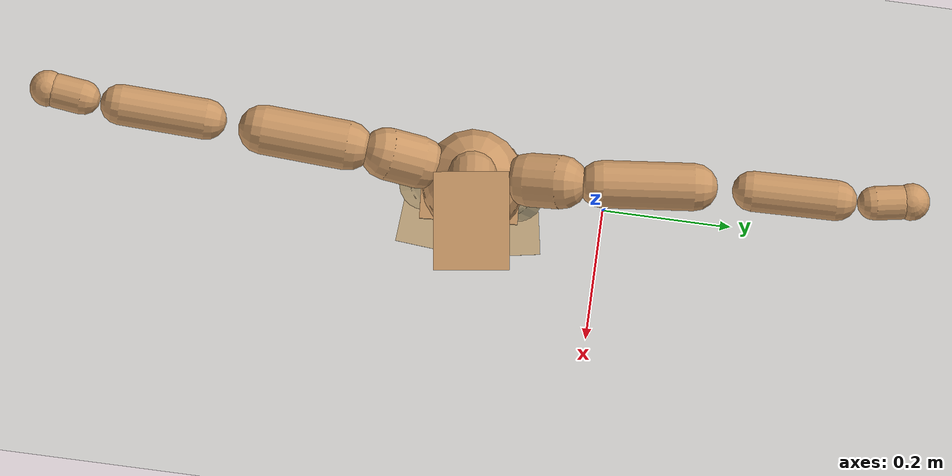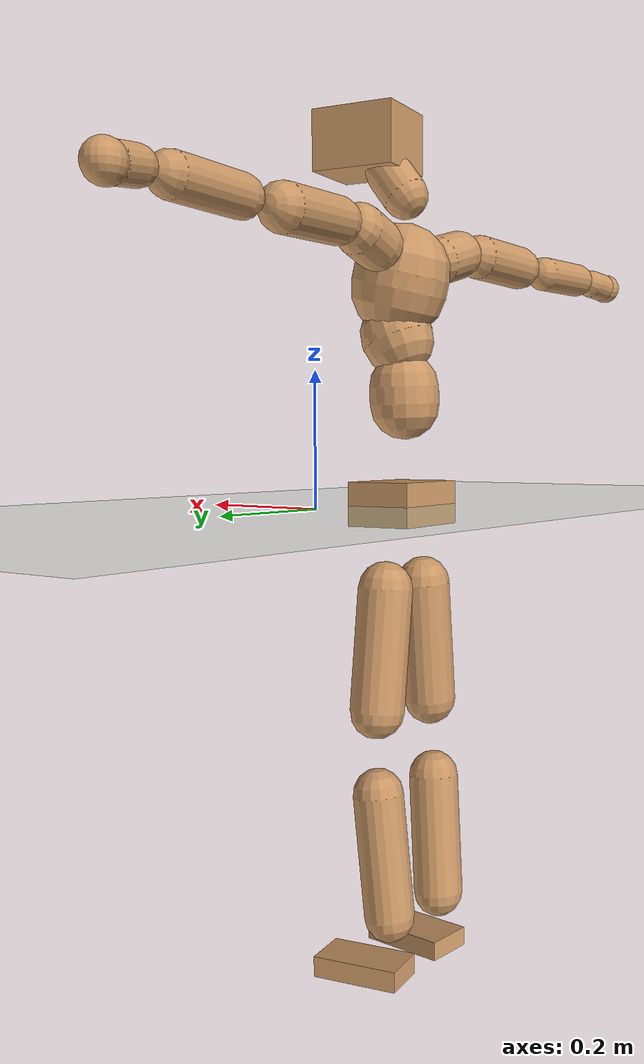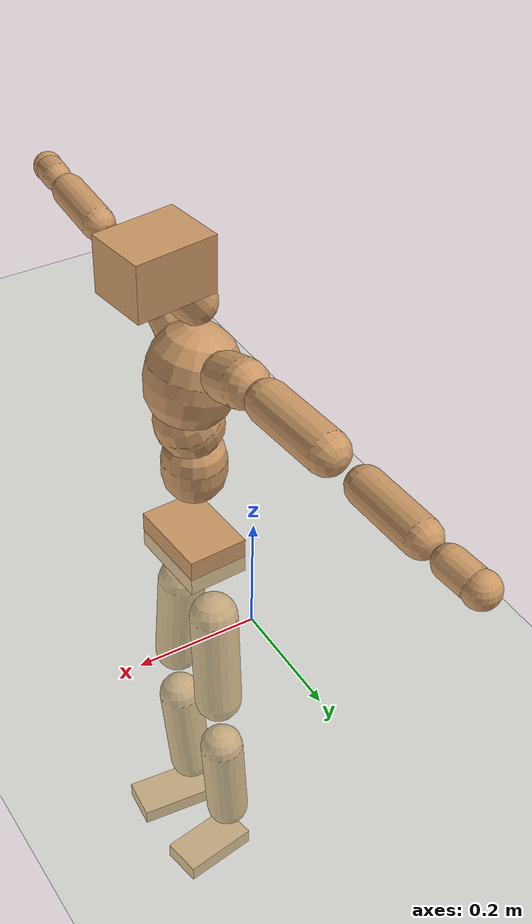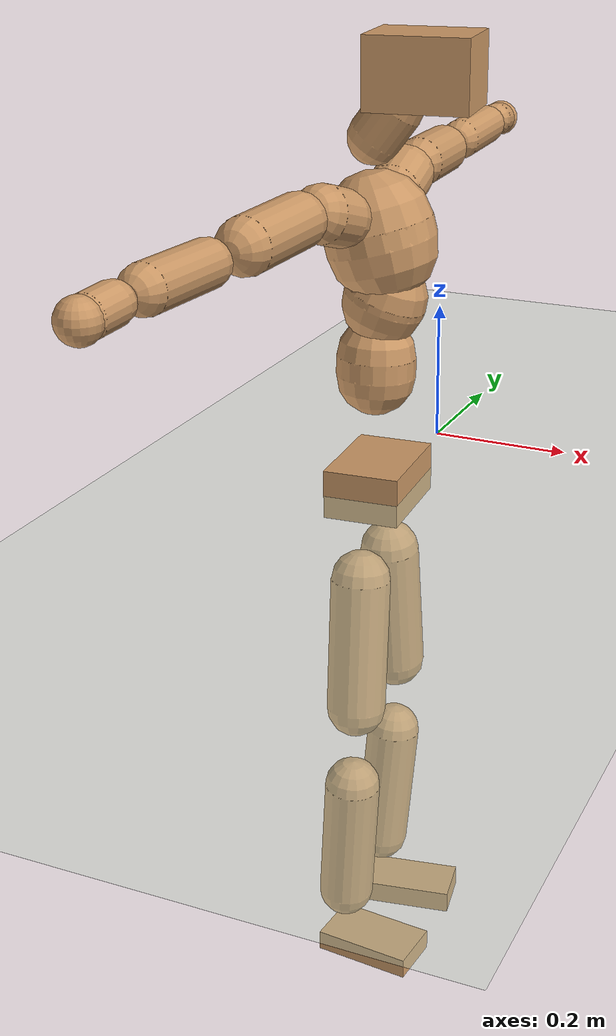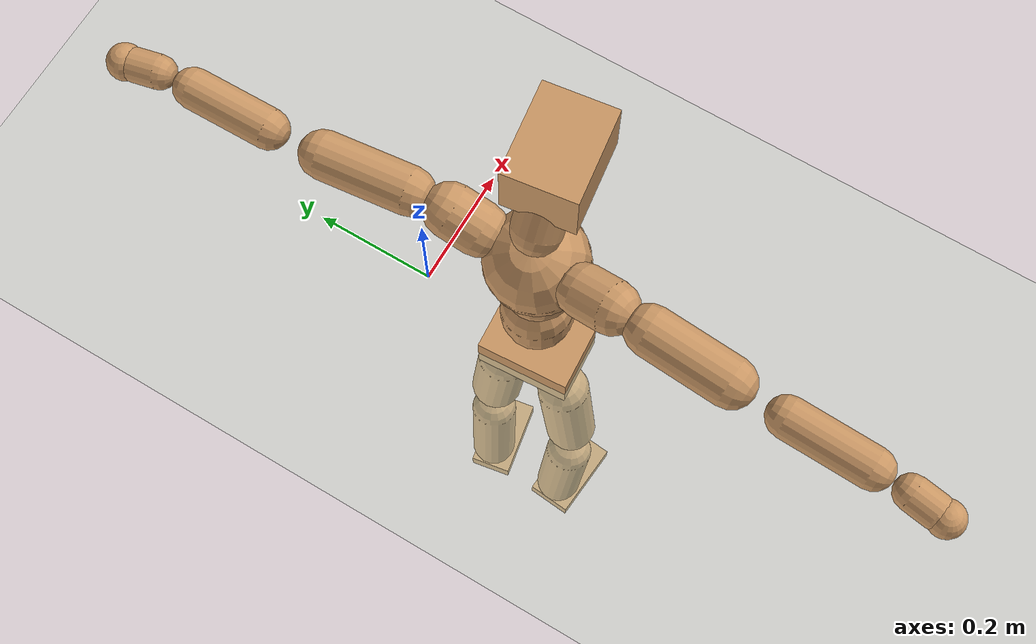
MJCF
<mujoco model="humanoid">
  <compiler coordinate="local" angle="radian"/>
  <default>
    <joint damping="0.0" armature="0.01" stiffness="0.0" limited="true"/>
    <geom conaffinity="1" condim="3" contype="7" margin="0.001" rgba="0.8 0.6 .4 1"/>
  </default>
  <asset>
    <texture type="skybox" builtin="gradient" rgb1=".4 .5 .6" rgb2="0 0 0" width="100" height="100"/>
    <texture builtin="flat" height="1278" mark="cross" markrgb="1 1 1" name="texgeom" random="0.01" rgb1="0.8 0.6 0.4" rgb2="0.8 0.6 0.4" type="cube" width="127"/>
    <texture builtin="checker" height="100" name="texplane" rgb1="0 0 0" rgb2="0.8 0.8 0.8" type="2d" width="100"/>
    <material name="MatPlane" reflectance="0.5" shininess="1" specular="1" texrepeat="60 60" texture="texplane"/>
    <material name="geom" texture="texgeom" texuniform="true"/>
  </asset>
  <worldbody>
    <light cutoff="100" diffuse="1 1 1" dir="-0 0 -1.3" directional="true" exponent="1" pos="0 0 1.3" specular=".1 .1 .1"/>
    <geom conaffinity="1" condim="3" name="floor" pos="0 0 0" rgba="0.8 0.9 0.8 1" size="100 100 .2" type="plane" material="MatPlane"/>
    <body name="Pelvis" pos="-0.0042 -0.2061 0.0116">
      <freejoint name="Pelvis"/>
      <geom type="box" contype="1" conaffinity="1" density="500" pos="-0.0053 -0.0003 -0.0109" size="0.0536 0.0758 0.0347" quat="0.9995 0.0000 0.0000 0.0315" name="Pelvis"/>
      <body name="L_Hip" pos="-0.0121 0.0493 -0.0783">
        <joint name="L_Hip_x" type="hinge" pos="0 0 0" axis="1 0 0" stiffness="800" damping="80" armature="0.02" range="-180.0000 180.0000"/>
        <joint name="L_Hip_y" type="hinge" pos="0 0 0" axis="0 1 0" stiffness="800" damping="80" armature="0.02" range="-180.0000 180.0000"/>
        <joint name="L_Hip_z" type="hinge" pos="0 0 0" axis="0 0 1" stiffness="800" damping="80" armature="0.02" range="-180.0000 180.0000"/>
        <geom type="capsule" contype="1" conaffinity="1" density="500" fromto="0.0009 0.0065 -0.0642 0.0038 0.0259 -0.2566" size="0.0431" name="L_Hip"/>
        <body name="L_Knee" pos="0.0047 0.0324 -0.3208">
          <joint name="L_Knee_x" type="hinge" pos="0 0 0" axis="1 0 0" stiffness="800" damping="80" armature="0.02" range="-180.0000 180.0000"/>
          <joint name="L_Knee_y" type="hinge" pos="0 0 0" axis="0 1 0" stiffness="800" damping="80" armature="0.02" range="-180.0000 180.0000"/>
          <joint name="L_Knee_z" type="hinge" pos="0 0 0" axis="0 0 1" stiffness="800" damping="80" armature="0.02" range="-180.0000 180.0000"/>
          <geom type="capsule" contype="1" conaffinity="1" density="500" fromto="-0.0055 -0.0021 -0.0660 -0.0221 -0.0086 -0.2639" size="0.04" name="L_Knee"/>
          <body name="L_Ankle" pos="-0.0276 -0.0107 -0.3299">
            <joint name="L_Ankle_x" type="hinge" pos="0 0 0" axis="1 0 0" stiffness="800" damping="80" armature="0.02" range="-180.0000 180.0000"/>
            <joint name="L_Ankle_y" type="hinge" pos="0 0 0" axis="0 1 0" stiffness="800" damping="80" armature="0.02" range="-180.0000 180.0000"/>
            <joint name="L_Ankle_z" type="hinge" pos="0 0 0" axis="0 0 1" stiffness="800" damping="80" armature="0.02" range="-180.0000 180.0000"/>
            <geom type="box" contype="1" conaffinity="1" density="500" pos="0.0509 0.0088 -0.0237" size="0.0716 0.0377 0.0166" quat="0.9964 0.0000 0.0000 0.0852" name="L_Ankle"/>
            <body name="L_Toe" pos="0.1019 0.0175 -0.0473">
              <joint name="L_Toe_x" type="hinge" pos="0 0 0" axis="1 0 0" stiffness="500" damping="50" armature="0.02" range="-180.0000 180.0000"/>
              <joint name="L_Toe_y" type="hinge" pos="0 0 0" axis="0 1 0" stiffness="500" damping="50" armature="0.02" range="-180.0000 180.0000"/>
              <joint name="L_Toe_z" type="hinge" pos="0 0 0" axis="0 0 1" stiffness="500" damping="50" armature="0.02" range="-180.0000 180.0000"/>
              <geom type="box" contype="1" conaffinity="1" density="500" pos="0.0000 0.0000 0.0251" size="0.0007 0.0019 0.0009" quat="0.9957 0.0000 0.0000 0.0929" name="L_Toe"/>
            </body>
          </body>
        </body>
      </body>
      <body name="R_Hip" pos="-0.0092 -0.0478 -0.0774">
        <joint name="R_Hip_x" type="hinge" pos="0 0 0" axis="1 0 0" stiffness="800" damping="80" armature="0.02" range="-180.0000 180.0000"/>
        <joint name="R_Hip_y" type="hinge" pos="0 0 0" axis="0 1 0" stiffness="800" damping="80" armature="0.02" range="-180.0000 180.0000"/>
        <joint name="R_Hip_z" type="hinge" pos="0 0 0" axis="0 0 1" stiffness="800" damping="80" armature="0.02" range="-180.0000 180.0000"/>
        <geom type="capsule" contype="1" conaffinity="1" density="500" fromto="0.0004 -0.0069 -0.0660 0.0017 -0.0276 -0.2638" size="0.0426" name="R_Hip"/>
        <body name="R_Knee" pos="0.0021 -0.0345 -0.3298">
          <joint name="R_Knee_x" type="hinge" pos="0 0 0" axis="1 0 0" stiffness="800" damping="80" armature="0.02" range="-180.0000 180.0000"/>
          <joint name="R_Knee_y" type="hinge" pos="0 0 0" axis="0 1 0" stiffness="800" damping="80" armature="0.02" range="-180.0000 180.0000"/>
          <joint name="R_Knee_z" type="hinge" pos="0 0 0" axis="0 0 1" stiffness="800" damping="80" armature="0.02" range="-180.0000 180.0000"/>
          <geom type="capsule" contype="1" conaffinity="1" density="500" fromto="-0.0051 0.0028 -0.0658 -0.0203 0.0110 -0.2630" size="0.0407" name="R_Knee"/>
          <body name="R_Ankle" pos="-0.0254 0.0138 -0.3288">
            <joint name="R_Ankle_x" type="hinge" pos="0 0 0" axis="1 0 0" stiffness="800" damping="80" armature="0.02" range="-180.0000 180.0000"/>
            <joint name="R_Ankle_y" type="hinge" pos="0 0 0" axis="0 1 0" stiffness="800" damping="80" armature="0.02" range="-180.0000 180.0000"/>
            <joint name="R_Ankle_z" type="hinge" pos="0 0 0" axis="0 0 1" stiffness="800" damping="80" armature="0.02" range="-180.0000 180.0000"/>
            <geom type="box" contype="1" conaffinity="1" density="500" pos="0.0518 -0.0044 -0.0189" size="0.0728 0.0404 0.0155" quat="0.9991 0.0000 0.0000 -0.0427" name="R_Ankle"/>
            <body name="R_Toe" pos="0.1036 -0.0089 -0.0377">
              <joint name="R_Toe_x" type="hinge" pos="0 0 0" axis="1 0 0" stiffness="500" damping="50" armature="0.02" range="-180.0000 180.0000"/>
              <joint name="R_Toe_y" type="hinge" pos="0 0 0" axis="0 1 0" stiffness="500" damping="50" armature="0.02" range="-180.0000 180.0000"/>
              <joint name="R_Toe_z" type="hinge" pos="0 0 0" axis="0 0 1" stiffness="500" damping="50" armature="0.02" range="-180.0000 180.0000"/>
              <geom type="box" contype="1" conaffinity="1" density="500" pos="0.0000 0.0000 0.0218" size="0.0007 0.002 0.0009" quat="0.9995 0.0000 0.0000 -0.0325" name="R_Toe"/>
            </body>
          </body>
        </body>
      </body>
      <body name="Torso" pos="-0.0103 -0.0035 0.0902">
        <joint name="Torso_x" type="hinge" pos="0 0 0" axis="1 0 0" stiffness="1000" damping="100" armature="0.02" range="-180.0000 180.0000"/>
        <joint name="Torso_y" type="hinge" pos="0 0 0" axis="0 1 0" stiffness="1000" damping="100" armature="0.02" range="-180.0000 180.0000"/>
        <joint name="Torso_z" type="hinge" pos="0 0 0" axis="0 0 1" stiffness="1000" damping="100" armature="0.02" range="-180.0000 180.0000"/>
        <geom type="capsule" contype="1" conaffinity="1" density="500" fromto="0.0018 0.0035 0.0821 0.0012 0.0023 0.0547" size="0.055" name="Torso"/>
        <body name="Spine" pos="0.003 0.0058 0.1368">
          <joint name="Spine_x" type="hinge" pos="0 0 0" axis="1 0 0" stiffness="1000" damping="100" armature="0.02" range="-180.0000 180.0000"/>
          <joint name="Spine_y" type="hinge" pos="0 0 0" axis="0 1 0" stiffness="1000" damping="100" armature="0.02" range="-180.0000 180.0000"/>
          <joint name="Spine_z" type="hinge" pos="0 0 0" axis="0 0 1" stiffness="1000" damping="100" armature="0.02" range="-180.0000 180.0000"/>
          <geom type="capsule" contype="1" conaffinity="1" density="500" fromto="0.0109 0.0019 0.0288 0.0072 0.0013 0.0192" size="0.057" name="Spine"/>
          <body name="Chest" pos="0.0181 0.0032 0.048">
            <joint name="Chest_x" type="hinge" pos="0 0 0" axis="1 0 0" stiffness="1000" damping="100" armature="0.02" range="-180.0000 180.0000"/>
            <joint name="Chest_y" type="hinge" pos="0 0 0" axis="0 1 0" stiffness="1000" damping="100" armature="0.02" range="-180.0000 180.0000"/>
            <joint name="Chest_z" type="hinge" pos="0 0 0" axis="0 0 1" stiffness="1000" damping="100" armature="0.02" range="-180.0000 180.0000"/>
            <geom type="capsule" contype="1" conaffinity="1" density="500" fromto="-0.0193 -0.0014 0.0753 -0.0129 -0.0009 0.0502" size="0.0759" name="Chest"/>
            <body name="Neck" pos="-0.0339 -0.0043 0.1786">
              <joint name="Neck_x" type="hinge" pos="0 0 0" axis="1 0 0" stiffness="500" damping="50" armature="0.02" range="-180.0000 180.0000"/>
              <joint name="Neck_y" type="hinge" pos="0 0 0" axis="0 1 0" stiffness="500" damping="50" armature="0.02" range="-180.0000 180.0000"/>
              <joint name="Neck_z" type="hinge" pos="0 0 0" axis="0 0 1" stiffness="500" damping="50" armature="0.02" range="-180.0000 180.0000"/>
              <geom type="capsule" contype="1" conaffinity="1" density="500" fromto="0.0101 0.0010 0.0133 0.0402 0.0040 0.0532" size="0.0362" name="Neck"/>
              <body name="Head" pos="0.0503 0.005 0.0665">
                <joint name="Head_x" type="hinge" pos="0 0 0" axis="1 0 0" stiffness="500" damping="50" armature="0.02" range="-180.0000 180.0000"/>
                <joint name="Head_y" type="hinge" pos="0 0 0" axis="0 1 0" stiffness="500" damping="50" armature="0.02" range="-180.0000 180.0000"/>
                <joint name="Head_z" type="hinge" pos="0 0 0" axis="0 0 1" stiffness="500" damping="50" armature="0.02" range="-180.0000 180.0000"/>
                <geom type="box" contype="1" conaffinity="1" density="500" pos="0.0262 0.0035 0.0342" size="0.0695 0.0536 0.0473" quat="0.9978 0.0000 0.0000 0.0667" name="Head"/>
              </body>
            </body>
            <body name="L_Thorax" pos="-0.0295 0.0648 0.1005">
              <joint name="L_Thorax_x" type="hinge" pos="0 0 0" axis="1 0 0" stiffness="500" damping="50" armature="0.02" range="-180.0000 180.0000"/>
              <joint name="L_Thorax_y" type="hinge" pos="0 0 0" axis="0 1 0" stiffness="500" damping="50" armature="0.02" range="-180.0000 180.0000"/>
              <joint name="L_Thorax_z" type="hinge" pos="0 0 0" axis="0 0 1" stiffness="500" damping="50" armature="0.02" range="-180.0000 180.0000"/>
              <geom type="capsule" contype="1" conaffinity="1" density="500" fromto="-0.0007 0.0153 0.0050 -0.0029 0.0612 0.0199" size="0.0396" name="L_Thorax"/>
              <body name="L_Shoulder" pos="-0.0036 0.0765 0.0249">
                <joint name="L_Shoulder_x" type="hinge" pos="0 0 0" axis="1 0 0" stiffness="500" damping="50" armature="0.02" range="-720.0000 720.0000"/>
                <joint name="L_Shoulder_y" type="hinge" pos="0 0 0" axis="0 1 0" stiffness="500" damping="50" armature="0.02" range="-720.0000 720.0000"/>
                <joint name="L_Shoulder_z" type="hinge" pos="0 0 0" axis="0 0 1" stiffness="500" damping="50" armature="0.02" range="-720.0000 720.0000"/>
                <geom type="capsule" contype="1" conaffinity="1" density="500" fromto="-0.0043 0.0442 -0.0016 -0.0174 0.1769 -0.0063" size="0.0352" name="L_Shoulder"/>
                <body name="L_Elbow" pos="-0.0217 0.2211 -0.0079">
                  <joint name="L_Elbow_x" type="hinge" pos="0 0 0" axis="1 0 0" stiffness="500" damping="50" armature="0.02" range="-720.0000 720.0000"/>
                  <joint name="L_Elbow_y" type="hinge" pos="0 0 0" axis="0 1 0" stiffness="500" damping="50" armature="0.02" range="-720.0000 720.0000"/>
                  <joint name="L_Elbow_z" type="hinge" pos="0 0 0" axis="0 0 1" stiffness="500" damping="50" armature="0.02" range="-720.0000 720.0000"/>
                  <geom type="capsule" contype="1" conaffinity="1" density="500" fromto="-0.0008 0.0412 0.0010 -0.0032 0.1646 0.0040" size="0.0297" name="L_Elbow"/>
                  <body name="L_Wrist" pos="-0.004 0.2058 0.005">
                    <joint name="L_Wrist_x" type="hinge" pos="0 0 0" axis="1 0 0" stiffness="300" damping="30" armature="0.02" range="-180.0000 180.0000"/>
                    <joint name="L_Wrist_y" type="hinge" pos="0 0 0" axis="0 1 0" stiffness="300" damping="30" armature="0.02" range="-180.0000 180.0000"/>
                    <joint name="L_Wrist_z" type="hinge" pos="0 0 0" axis="0 0 1" stiffness="300" damping="30" armature="0.02" range="-180.0000 180.0000"/>
                    <geom type="capsule" contype="1" conaffinity="1" density="500" fromto="-0.0023 0.0135 -0.0016 -0.0092 0.0539 -0.0066" size="0.0251" name="L_Wrist"/>
                    <body name="L_Hand" pos="-0.0114 0.0673 -0.0082">
                      <joint name="L_Hand_x" type="hinge" pos="0 0 0" axis="1 0 0" stiffness="300" damping="30" armature="0.02" range="-180.0000 180.0000"/>
                      <joint name="L_Hand_y" type="hinge" pos="0 0 0" axis="0 1 0" stiffness="300" damping="30" armature="0.02" range="-180.0000 180.0000"/>
                      <joint name="L_Hand_z" type="hinge" pos="0 0 0" axis="0 0 1" stiffness="300" damping="30" armature="0.02" range="-180.0000 180.0000"/>
                      <geom type="sphere" contype="1" conaffinity="1" density="500" size="0.0273" pos="0.0000 0.0000 0.0000" name="L_Hand"/>
                    </body>
                  </body>
                </body>
              </body>
            </body>
            <body name="R_Thorax" pos="-0.0331 -0.0672 0.0974">
              <joint name="R_Thorax_x" type="hinge" pos="0 0 0" axis="1 0 0" stiffness="500" damping="50" armature="0.02" range="-180.0000 180.0000"/>
              <joint name="R_Thorax_y" type="hinge" pos="0 0 0" axis="0 1 0" stiffness="500" damping="50" armature="0.02" range="-180.0000 180.0000"/>
              <joint name="R_Thorax_z" type="hinge" pos="0 0 0" axis="0 0 1" stiffness="500" damping="50" armature="0.02" range="-180.0000 180.0000"/>
              <geom type="capsule" contype="1" conaffinity="1" density="500" fromto="-0.0019 -0.0160 0.0049 -0.0077 -0.0638 0.0196" size="0.0388" name="R_Thorax"/>
              <body name="R_Shoulder" pos="-0.0097 -0.0798 0.0245">
                <joint name="R_Shoulder_x" type="hinge" pos="0 0 0" axis="1 0 0" stiffness="500" damping="50" armature="0.02" range="-720.0000 720.0000"/>
                <joint name="R_Shoulder_y" type="hinge" pos="0 0 0" axis="0 1 0" stiffness="500" damping="50" armature="0.02" range="-720.0000 720.0000"/>
                <joint name="R_Shoulder_z" type="hinge" pos="0 0 0" axis="0 0 1" stiffness="500" damping="50" armature="0.02" range="-720.0000 720.0000"/>
                <geom type="capsule" contype="1" conaffinity="1" density="500" fromto="-0.0024 -0.0419 -0.0012 -0.0096 -0.1674 -0.0048" size="0.0364" name="R_Shoulder"/>
                <body name="R_Elbow" pos="-0.012 -0.2093 -0.006">
                  <joint name="R_Elbow_x" type="hinge" pos="0 0 0" axis="1 0 0" stiffness="500" damping="50" armature="0.02" range="-720.0000 720.0000"/>
                  <joint name="R_Elbow_y" type="hinge" pos="0 0 0" axis="0 1 0" stiffness="500" damping="50" armature="0.02" range="-720.0000 720.0000"/>
                  <joint name="R_Elbow_z" type="hinge" pos="0 0 0" axis="0 0 1" stiffness="500" damping="50" armature="0.02" range="-720.0000 720.0000"/>
                  <geom type="capsule" contype="1" conaffinity="1" density="500" fromto="-0.0017 -0.0421 0.0007 -0.0066 -0.1685 0.0028" size="0.0299" name="R_Elbow"/>
                  <body name="R_Wrist" pos="-0.0083 -0.2107 0.0035">
                    <joint name="R_Wrist_x" type="hinge" pos="0 0 0" axis="1 0 0" stiffness="300" damping="30" armature="0.02" range="-180.0000 180.0000"/>
                    <joint name="R_Wrist_y" type="hinge" pos="0 0 0" axis="0 1 0" stiffness="300" damping="30" armature="0.02" range="-180.0000 180.0000"/>
                    <joint name="R_Wrist_z" type="hinge" pos="0 0 0" axis="0 0 1" stiffness="300" damping="30" armature="0.02" range="-180.0000 180.0000"/>
                    <geom type="capsule" contype="1" conaffinity="1" density="500" fromto="-0.0016 -0.0133 -0.0012 -0.0065 -0.0532 -0.0047" size="0.0255" name="R_Wrist"/>
                    <body name="R_Hand" pos="-0.0081 -0.0664 -0.0058">
                      <joint name="R_Hand_x" type="hinge" pos="0 0 0" axis="1 0 0" stiffness="300" damping="30" armature="0.02" range="-180.0000 180.0000"/>
                      <joint name="R_Hand_y" type="hinge" pos="0 0 0" axis="0 1 0" stiffness="300" damping="30" armature="0.02" range="-180.0000 180.0000"/>
                      <joint name="R_Hand_z" type="hinge" pos="0 0 0" axis="0 0 1" stiffness="300" damping="30" armature="0.02" range="-180.0000 180.0000"/>
                      <geom type="sphere" contype="1" conaffinity="1" density="500" size="0.0268" pos="0.0000 0.0000 0.0000" name="R_Hand"/>
                    </body>
                  </body>
                </body>
              </body>
            </body>
          </body>
        </body>
      </body>
    </body>
  </worldbody>
  <actuator>
    <motor name="L_Hip_x" joint="L_Hip_x" gear="500"/>
    <motor name="L_Hip_y" joint="L_Hip_y" gear="500"/>
    <motor name="L_Hip_z" joint="L_Hip_z" gear="500"/>
    <motor name="L_Knee_x" joint="L_Knee_x" gear="500"/>
    <motor name="L_Knee_y" joint="L_Knee_y" gear="500"/>
    <motor name="L_Knee_z" joint="L_Knee_z" gear="500"/>
    <motor name="L_Ankle_x" joint="L_Ankle_x" gear="500"/>
    <motor name="L_Ankle_y" joint="L_Ankle_y" gear="500"/>
    <motor name="L_Ankle_z" joint="L_Ankle_z" gear="500"/>
    <motor name="L_Toe_x" joint="L_Toe_x" gear="500"/>
    <motor name="L_Toe_y" joint="L_Toe_y" gear="500"/>
    <motor name="L_Toe_z" joint="L_Toe_z" gear="500"/>
    <motor name="R_Hip_x" joint="R_Hip_x" gear="500"/>
    <motor name="R_Hip_y" joint="R_Hip_y" gear="500"/>
    <motor name="R_Hip_z" joint="R_Hip_z" gear="500"/>
    <motor name="R_Knee_x" joint="R_Knee_x" gear="500"/>
    <motor name="R_Knee_y" joint="R_Knee_y" gear="500"/>
    <motor name="R_Knee_z" joint="R_Knee_z" gear="500"/>
    <motor name="R_Ankle_x" joint="R_Ankle_x" gear="500"/>
    <motor name="R_Ankle_y" joint="R_Ankle_y" gear="500"/>
    <motor name="R_Ankle_z" joint="R_Ankle_z" gear="500"/>
    <motor name="R_Toe_x" joint="R_Toe_x" gear="500"/>
    <motor name="R_Toe_y" joint="R_Toe_y" gear="500"/>
    <motor name="R_Toe_z" joint="R_Toe_z" gear="500"/>
    <motor name="Torso_x" joint="Torso_x" gear="500"/>
    <motor name="Torso_y" joint="Torso_y" gear="500"/>
    <motor name="Torso_z" joint="Torso_z" gear="500"/>
    <motor name="Spine_x" joint="Spine_x" gear="500"/>
    <motor name="Spine_y" joint="Spine_y" gear="500"/>
    <motor name="Spine_z" joint="Spine_z" gear="500"/>
    <motor name="Chest_x" joint="Chest_x" gear="500"/>
    <motor name="Chest_y" joint="Chest_y" gear="500"/>
    <motor name="Chest_z" joint="Chest_z" gear="500"/>
    <motor name="Neck_x" joint="Neck_x" gear="500"/>
    <motor name="Neck_y" joint="Neck_y" gear="500"/>
    <motor name="Neck_z" joint="Neck_z" gear="500"/>
    <motor name="Head_x" joint="Head_x" gear="500"/>
    <motor name="Head_y" joint="Head_y" gear="500"/>
    <motor name="Head_z" joint="Head_z" gear="500"/>
    <motor name="L_Thorax_x" joint="L_Thorax_x" gear="500"/>
    <motor name="L_Thorax_y" joint="L_Thorax_y" gear="500"/>
    <motor name="L_Thorax_z" joint="L_Thorax_z" gear="500"/>
    <motor name="L_Shoulder_x" joint="L_Shoulder_x" gear="500"/>
    <motor name="L_Shoulder_y" joint="L_Shoulder_y" gear="500"/>
    <motor name="L_Shoulder_z" joint="L_Shoulder_z" gear="500"/>
    <motor name="L_Elbow_x" joint="L_Elbow_x" gear="500"/>
    <motor name="L_Elbow_y" joint="L_Elbow_y" gear="500"/>
    <motor name="L_Elbow_z" joint="L_Elbow_z" gear="500"/>
    <motor name="L_Wrist_x" joint="L_Wrist_x" gear="500"/>
    <motor name="L_Wrist_y" joint="L_Wrist_y" gear="500"/>
    <motor name="L_Wrist_z" joint="L_Wrist_z" gear="500"/>
    <motor name="L_Hand_x" joint="L_Hand_x" gear="500"/>
    <motor name="L_Hand_y" joint="L_Hand_y" gear="500"/>
    <motor name="L_Hand_z" joint="L_Hand_z" gear="500"/>
    <motor name="R_Thorax_x" joint="R_Thorax_x" gear="500"/>
    <motor name="R_Thorax_y" joint="R_Thorax_y" gear="500"/>
    <motor name="R_Thorax_z" joint="R_Thorax_z" gear="500"/>
    <motor name="R_Shoulder_x" joint="R_Shoulder_x" gear="500"/>
    <motor name="R_Shoulder_y" joint="R_Shoulder_y" gear="500"/>
    <motor name="R_Shoulder_z" joint="R_Shoulder_z" gear="500"/>
    <motor name="R_Elbow_x" joint="R_Elbow_x" gear="500"/>
    <motor name="R_Elbow_y" joint="R_Elbow_y" gear="500"/>
    <motor name="R_Elbow_z" joint="R_Elbow_z" gear="500"/>
    <motor name="R_Wrist_x" joint="R_Wrist_x" gear="500"/>
    <motor name="R_Wrist_y" joint="R_Wrist_y" gear="500"/>
    <motor name="R_Wrist_z" joint="R_Wrist_z" gear="500"/>
    <motor name="R_Hand_x" joint="R_Hand_x" gear="500"/>
    <motor name="R_Hand_y" joint="R_Hand_y" gear="500"/>
    <motor name="R_Hand_z" joint="R_Hand_z" gear="500"/>
  </actuator>
  <contact>
    <exclude body1="Torso" body2="Chest"/>
    <exclude body1="Head" body2="Chest"/>
    <exclude body1="R_Knee" body2="R_Toe"/>
    <exclude body1="R_Knee" body2="L_Ankle"/>
    <exclude body1="R_Knee" body2="L_Toe"/>
    <exclude body1="L_Knee" body2="L_Toe"/>
    <exclude body1="L_Knee" body2="R_Ankle"/>
    <exclude body1="L_Knee" body2="R_Toe"/>
    <exclude body1="L_Shoulder" body2="Chest"/>
    <exclude body1="R_Shoulder" body2="Chest"/>
  </contact>
  <sensor/>
  <size njmax="700" nconmax="700"/>
</mujoco>
